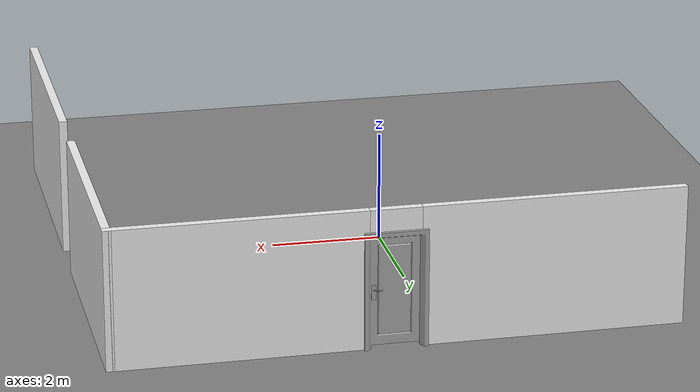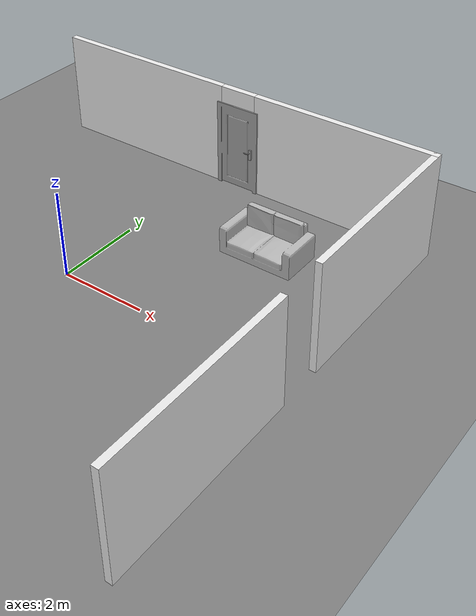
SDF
<sdf version='1.9'>
  <world name='windy'>
    <physics type="ode">
      <max_step_size>0.004</max_step_size>
      <real_time_factor>1.0</real_time_factor>
      <real_time_update_rate>250</real_time_update_rate>
    </physics>
    <plugin name='gz::sim::systems::Physics' filename='gz-sim-physics-system'/>
    <plugin name='gz::sim::systems::UserCommands' filename='gz-sim-user-commands-system'/>
    <plugin name='gz::sim::systems::SceneBroadcaster' filename='gz-sim-scene-broadcaster-system'/>
    <plugin name='gz::sim::systems::Contact' filename='gz-sim-contact-system'/>
    <plugin name='gz::sim::systems::Imu' filename='gz-sim-imu-system'/>
    <plugin name='gz::sim::systems::AirPressure' filename='gz-sim-air-pressure-system'/>
    <plugin name='gz::sim::systems::ApplyLinkWrench' filename='gz-sim-apply-link-wrench-system'/>
    <plugin name='gz::sim::systems::NavSat' filename='gz-sim-navsat-system'/>
    <plugin name='gz::sim::systems::Sensors' filename='gz-sim-sensors-system'>
      <render_engine>ogre2</render_engine>
    </plugin>
    <gui fullscreen='false'>

      <!-- 3D scene -->
      <plugin filename="MinimalScene" name="3D View">
        <gz-gui>
          <title>3D View</title>
          <property type="bool" key="showTitleBar">false</property>
          <property type="string" key="state">docked</property>
        </gz-gui>

        <engine>ogre2</engine>
        <scene>scene</scene>
        <ambient_light>0.4 0.4 0.4</ambient_light>
        <background_color>0.8 0.8 0.8</background_color>
        <camera_pose>-6 0 6 0 0.5 0</camera_pose>
        <camera_clip>
          <near>0.25</near>
          <far>25000</far>
        </camera_clip>
      </plugin>

      <!-- Plugins that add functionality to the scene -->
      <plugin filename="EntityContextMenuPlugin" name="Entity context menu">
        <gz-gui>
          <property key="state" type="string">floating</property>
          <property key="width" type="double">5</property>
          <property key="height" type="double">5</property>
          <property key="showTitleBar" type="bool">false</property>
        </gz-gui>
      </plugin>
      <plugin filename="GzSceneManager" name="Scene Manager">
        <gz-gui>
          <property key="resizable" type="bool">false</property>
          <property key="width" type="double">5</property>
          <property key="height" type="double">5</property>
          <property key="state" type="string">floating</property>
          <property key="showTitleBar" type="bool">false</property>
        </gz-gui>
      </plugin>
      <plugin filename="InteractiveViewControl" name="Interactive view control">
        <gz-gui>
          <property key="resizable" type="bool">false</property>
          <property key="width" type="double">5</property>
          <property key="height" type="double">5</property>
          <property key="state" type="string">floating</property>
          <property key="showTitleBar" type="bool">false</property>
        </gz-gui>
      </plugin>
      <plugin filename="CameraTracking" name="Camera Tracking">
        <gz-gui>
          <property key="resizable" type="bool">false</property>
          <property key="width" type="double">5</property>
          <property key="height" type="double">5</property>
          <property key="state" type="string">floating</property>
          <property key="showTitleBar" type="bool">false</property>
        </gz-gui>
      </plugin>
      <plugin filename="MarkerManager" name="Marker manager">
        <gz-gui>
          <property key="resizable" type="bool">false</property>
          <property key="width" type="double">5</property>
          <property key="height" type="double">5</property>
          <property key="state" type="string">floating</property>
          <property key="showTitleBar" type="bool">false</property>
        </gz-gui>
      </plugin>
      <plugin filename="SelectEntities" name="Select Entities">
        <gz-gui>
          <anchors target="Select entities">
            <line own="right" target="right"/>
            <line own="top" target="top"/>
          </anchors>
          <property key="resizable" type="bool">false</property>
          <property key="width" type="double">5</property>
          <property key="height" type="double">5</property>
          <property key="state" type="string">floating</property>
          <property key="showTitleBar" type="bool">false</property>
        </gz-gui>
      </plugin>
      <plugin filename="VisualizationCapabilities" name="Visualization Capabilities">
        <gz-gui>
          <property key="resizable" type="bool">false</property>
          <property key="width" type="double">5</property>
          <property key="height" type="double">5</property>
          <property key="state" type="string">floating</property>
          <property key="showTitleBar" type="bool">false</property>
        </gz-gui>
      </plugin>
      <plugin filename="Spawn" name="Spawn Entities">
        <gz-gui>
          <anchors target="Select entities">
            <line own="right" target="right"/>
            <line own="top" target="top"/>
          </anchors>
          <property key="resizable" type="bool">false</property>
          <property key="width" type="double">5</property>
          <property key="height" type="double">5</property>
          <property key="state" type="string">floating</property>
          <property key="showTitleBar" type="bool">false</property>
        </gz-gui>
      </plugin>

      <plugin name='World control' filename='WorldControl'>
        <gz-gui>
          <title>World control</title>
          <property type='bool' key='showTitleBar'>0</property>
          <property type='bool' key='resizable'>0</property>
          <property type='double' key='height'>72</property>
          <property type='double' key='width'>121</property>
          <property type='double' key='z'>1</property>
          <property type='string' key='state'>floating</property>
          <anchors target='3D View'>
            <line own='left' target='left'/>
            <line own='bottom' target='bottom'/>
          </anchors>
        </gz-gui>
        <play_pause>1</play_pause>
        <step>1</step>
        <start_paused>1</start_paused>
      </plugin>
      <plugin name='World stats' filename='WorldStats'>
        <gz-gui>
          <title>World stats</title>
          <property type='bool' key='showTitleBar'>0</property>
          <property type='bool' key='resizable'>0</property>
          <property type='double' key='height'>110</property>
          <property type='double' key='width'>290</property>
          <property type='double' key='z'>1</property>
          <property type='string' key='state'>floating</property>
          <anchors target='3D View'>
            <line own='right' target='right'/>
            <line own='bottom' target='bottom'/>
          </anchors>
        </gz-gui>
        <sim_time>1</sim_time>
        <real_time>1</real_time>
        <real_time_factor>1</real_time_factor>
        <iterations>1</iterations>
      </plugin>
      <plugin name='Entity tree' filename='EntityTree'/>
    </gui>
    <gravity>0 0 -9.8</gravity>
    <magnetic_field>6e-06 2.3e-05 -4.2e-05</magnetic_field>
    <atmosphere type='adiabatic'/>
    <scene>
      <grid>false</grid>
      <ambient>0.4 0.4 0.4 1</ambient>
      <background>0.7 0.7 0.7 1</background>
      <shadows>true</shadows>
    </scene>
    <model name='ground_plane'>
      <static>true</static>
      <link name='link'>
        <collision name='collision'>
          <geometry>
            <plane>
              <normal>0 0 1</normal>
              <size>100 100</size>
            </plane>
          </geometry>
        </collision>
        <visual name='visual'>
          <geometry>
            <plane>
              <normal>0 0 1</normal>
              <size>100 100</size>
            </plane>
          </geometry>
          <material>
            <ambient>0.5 0.5 0.5 1.0</ambient>
            <diffuse>0.5 0.5 0.5 1.0</diffuse>
            <specular>0.1 0.1 0.1 1.0</specular>
            <emissive>0 0 0 1.0</emissive>
          </material>
        </visual>
      </link>
    </model>
    <model name='office_small_1'>
      <model name='door_3d'>
          <link name='link_1'>
              <visual name='visual'>
                  <pose frame=''>0 0 0 0 -0 0</pose>
                  <geometry>
                      <mesh>
                          <uri>model://door_3d/meshes/door_v2_door.dae</uri>
                          <scale>1 1 1</scale>
                      </mesh>
                  </geometry>
                  <material>
                      <script>
                          <uri>model://door_3d/materials/scripts</uri>
                          <uri>model://door_3d/materials/textures</uri>
                          <name>door_3d</name>
                      </script>
                  </material>
                  <cast_shadows>1</cast_shadows>
                  <transparency>0</transparency>
              </visual>
              <collision name='collision'>
                  <laser_retro>0</laser_retro>
                  <max_contacts>10</max_contacts>
                  <pose frame=''>0 0 0 0 -0 0</pose>
                  <geometry>
                      <mesh>
                          <uri>model://door_3d/meshes/door_v2_door.dae</uri>
                          <scale>1 1 1</scale>
                      </mesh>
                  </geometry>
                  <surface>
                      <contact>
                          <ode/>
                      </contact>
                      <bounce/>
                      <friction>
                          <torsional>
                              <ode/>
                          </torsional>
                          <ode/>
                      </friction>
                  </surface>
              </collision>
              <self_collide>0</self_collide>
              <kinematic>0</kinematic>
              <gravity>1</gravity>
          </link>
          <link name='link_2'>
              <visual name='visual'>
                  <pose frame=''>0 0 0 0 -0 0</pose>
                  <geometry>
                      <mesh>
                          <uri>model://door_3d/meshes/door_v2_handle.dae</uri>
                          <scale>1 1 1</scale>
                      </mesh>
                  </geometry>
                  <material>
                      <script>
                          <uri>model://door_3d/materials/scripts</uri>
                          <uri>model://door_3d/materials/textures</uri>
                          <name>door_handle</name>
                      </script>
                  </material>
                  <cast_shadows>1</cast_shadows>
                  <transparency>0</transparency>
              </visual>
              <collision name='collision'>
                  <laser_retro>0</laser_retro>
                  <max_contacts>10</max_contacts>
                  <pose frame=''>0 0 0 0 -0 0</pose>
                  <geometry>
                      <mesh>
                          <uri>model://door_3d/meshes/door_v2_handle.dae</uri>
                          <scale>1 1 1</scale>
                      </mesh>
                  </geometry>
                  <surface>
                      <contact>
                          <ode/>
                      </contact>
                      <bounce/>
                      <friction>
                          <torsional>
                              <ode/>
                          </torsional>
                          <ode/>
                      </friction>
                  </surface>
              </collision>
              <self_collide>0</self_collide>
              <kinematic>0</kinematic>
              <gravity>1</gravity>
          </link>
          <static>1</static>
          <allow_auto_disable>1</allow_auto_disable>
          <pose frame=''>0.856135 4.98035 0 0 -0 0</pose>
      </model>
      <model name='office_small'>
          <pose frame=''>0.796663 0.043102 0 0 -0 0</pose>
          <link name='Wall_2'>
              <pose frame=''>0 4.925 0 0 -0 0</pose>
              <visual name='Wall_2_Visual_0'>
                  <pose frame=''>-2.69024 0 1.25 0 -0 0</pose>
                  <geometry>
                      <box>
                          <size>4.61951 0.15 2.5</size>
                      </box>
                  </geometry>
                  <material>
                      <script>
                          <uri>model://office_small/materials/scripts</uri>
                          <uri>model://office_small/materials/textures</uri>
                          <name>wall_white</name>
                      </script>
                  </material>
              </visual>
              <collision name='Wall_2_Collision_0'>
                  <geometry>
                      <box>
                          <size>4.61951 0.15 2.5</size>
                      </box>
                  </geometry>
                  <pose frame=''>-2.69024 0 1.25 0 -0 0</pose>
                  <max_contacts>10</max_contacts>
                  <surface>
                      <contact>
                          <ode/>
                      </contact>
                      <bounce/>
                      <friction>
                          <torsional>
                              <ode/>
                          </torsional>
                          <ode/>
                      </friction>
                  </surface>
              </collision>
              <visual name='Wall_2_Visual_1'>
                  <pose frame=''>2.75976 0 1.25 0 -0 0</pose>
                  <geometry>
                      <box>
                          <size>4.48049 0.15 2.5</size>
                      </box>
                  </geometry>
                  <material>
                      <script>
                          <uri>model://office_small/materials/scripts</uri>
                          <uri>model://office_small/materials/textures</uri>
                          <name>wall_white</name>
                      </script>
                  </material>
              </visual>
              <collision name='Wall_2_Collision_1'>
                  <geometry>
                      <box>
                          <size>4.48049 0.15 2.5</size>
                      </box>
                  </geometry>
                  <pose frame=''>2.75976 0 1.25 0 -0 0</pose>
                  <max_contacts>10</max_contacts>
                  <surface>
                      <contact>
                          <ode/>
                      </contact>
                      <bounce/>
                      <friction>
                          <torsional>
                              <ode/>
                          </torsional>
                          <ode/>
                      </friction>
                  </surface>
              </collision>
              <visual name='Wall_2_Visual_2'>
                  <pose frame=''>0.06951 0 2.25 0 -0 0</pose>
                  <geometry>
                      <box>
                          <size>0.9 0.15 0.5</size>
                      </box>
                  </geometry>
                  <material>
                      <script>
                          <uri>model://office_small/materials/scripts</uri>
                          <uri>model://office_small/materials/textures</uri>
                          <name>wall_white</name>
                      </script>
                  </material>
              </visual>
              <collision name='Wall_2_Collision_2'>
                  <geometry>
                      <box>
                          <size>0.9 0.15 0.5</size>
                      </box>
                  </geometry>
                  <pose frame=''>0.06951 0 2.25 0 -0 0</pose>
                  <max_contacts>10</max_contacts>
                  <surface>
                      <contact>
                          <ode/>
                      </contact>
                      <bounce/>
                      <friction>
                          <torsional>
                              <ode/>
                          </torsional>
                          <ode/>
                      </friction>
                  </surface>
              </collision>
              <self_collide>0</self_collide>
              <kinematic>0</kinematic>
              <gravity>1</gravity>
          </link>
          <link name='Wall_3'>
              <pose frame=''>4.925 0 0 0 0 -1.5708</pose>
              <visual name='Wall_3_Visual_0'>
                  <pose frame=''>-2.74228 0 1.25 0 -0 0</pose>
                  <geometry>
                      <box>
                          <size>4.51544 0.15 2.5</size>
                      </box>
                  </geometry>
                  <material>
                      <script>
                          <uri>model://office_small/materials/scripts</uri>
                          <uri>model://office_small/materials/textures</uri>
                          <name>wall_white</name>
                      </script>
                  </material>
              </visual>
              <collision name='Wall_3_Collision_0'>
                  <geometry>
                      <box>
                          <size>4.51544 0.15 2.5</size>
                      </box>
                  </geometry>
                  <pose frame=''>-2.74228 0 1.25 0 -0 0</pose>
                  <max_contacts>10</max_contacts>
                  <surface>
                      <contact>
                          <ode/>
                      </contact>
                      <bounce/>
                      <friction>
                          <torsional>
                              <ode/>
                          </torsional>
                          <ode/>
                      </friction>
                  </surface>
              </collision>
              <visual name='Wall_3_Visual_1'>
                  <pose frame=''>2.82523 0 1.25 0 -0 0</pose>
                  <geometry>
                      <box>
                          <size>4.51544 0.15 2.5</size>
                      </box>
                  </geometry>
                  <material>
                      <script>
                          <uri>model://office_small/materials/scripts</uri>
                          <uri>model://office_small/materials/textures</uri>
                          <name>wall_white</name>
                      </script>
                  </material>
              </visual>
              <collision name='Wall_3_Collision_1'>
                  <geometry>
                      <box>
                          <size>4.51544 0.15 2.5</size>
                      </box>
                  </geometry>
                  <pose frame=''>2.82523 0 1.25 0 -0 0</pose>
                  <max_contacts>10</max_contacts>
                  <surface>
                      <contact>
                          <ode/>
                      </contact>
                      <bounce/>
                      <friction>
                          <torsional>
                              <ode/>
                          </torsional>
                          <ode/>
                      </friction>
                  </surface>
              </collision>
              <self_collide>0</self_collide>
              <kinematic>0</kinematic>
              <gravity>1</gravity>
          </link>
      </model>
    </model>
    <model name='sofa'>
      <pose frame=''>1 1 0 0 0 0</pose>
      <link name='link_1'>
          <pose frame=''>1 1 0 0 -0 0</pose>
          <visual name='sofa_Visual_0'>
              <pose frame=''>1 1 0 0 -0 0</pose>
              <geometry>
                  <mesh>
                      <uri>model://Sofa/meshes/Sofa.obj</uri>
                      <scale>1 1 1</scale>
                  </mesh>
              </geometry>
              <cast_shadows>1</cast_shadows>
              <transparency>0</transparency>
          </visual>
          <collision name='sofa_Collision_0'>
              <geometry>
                  <mesh>
                      <uri>model://Sofa/meshes/Sofa.obj</uri>
                      <scale>1 1 1</scale>
                  </mesh>
              </geometry>
              <pose frame=''>1 1 0 0 -0 0</pose>
              <max_contacts>10</max_contacts>
              <surface>
                  <contact>
                      <ode/>
                  </contact>
                  <bounce/>
                  <friction>
                      <torsional>
                          <ode/>
                      </torsional>
                      <ode/>
                  </friction>
              </surface>
          </collision>
          <self_collide>0</self_collide>
          <kinematic>0</kinematic>
          <gravity>1</gravity>
      </link>
      <static>0</static>
      <allow_auto_disable>1</allow_auto_disable>
    </model>
  </world>
</sdf>
